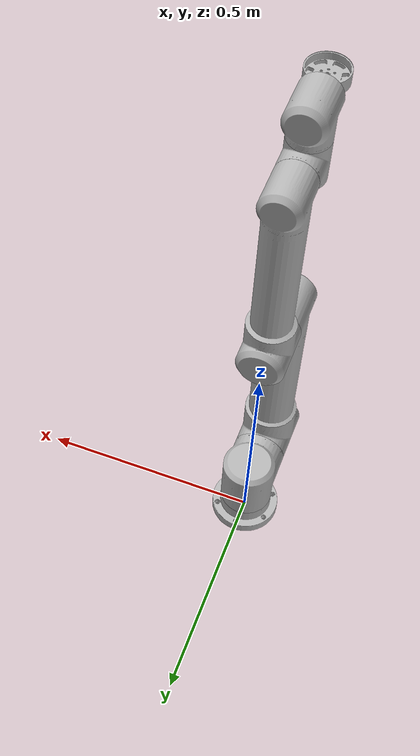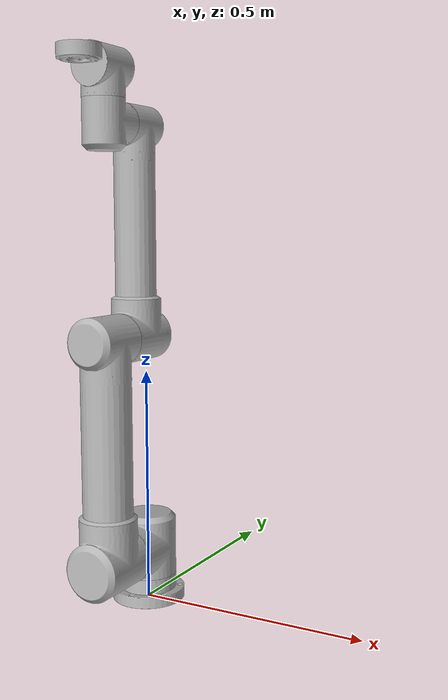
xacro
<?xml version='1.0' encoding='utf-8'?>
<robot xmlns:xacro="http://ros.org/wiki/xacro" name="utra6_1000">

  <xacro:arg name="prefix" default=""/>
  <xacro:arg name="ros_namespace" default="utra"/>
  <xacro:arg name="limited" default="false"/>
  <xacro:arg name="effort_control" default="false"/>
  <xacro:arg name="attach_to_world" default="true"/>
  <xacro:arg name="add_realsense_d435i" default="false"/>

    <!-- utra6_1000 -->
    <xacro:include filename="$(find utra_description)/urdf/utra6_1000.urdf.xacro" />

    <xacro:if value="$(arg attach_to_world)">
      <link name="world" />
    </xacro:if>

    <joint name="$(arg prefix)world_joint" type="fixed">
      <parent link="world" />
      <child link = "$(arg prefix)base_link" />
      <origin xyz="0 0 0" rpy="0 0 0" />
    </joint>

    <xacro:if value="$(arg limited)">
      <xacro:utra6_1000_urdf prefix="$(arg prefix)"
        joint1_lower_limit="${-2.0*pi}" joint1_upper_limit="${2.0*pi}"
        joint2_lower_limit="${-2.0*pi}" joint2_upper_limit="${2.0*pi}"
        joint3_lower_limit="${-2.0*pi}" joint3_upper_limit="${2.0*pi}"
        joint4_lower_limit="${-2.0*pi}" joint4_upper_limit="${2.0*pi}"
        joint5_lower_limit="${-2.0*pi}" joint5_upper_limit="${2.0*pi}"
        joint6_lower_limit="${-2.0*pi}" joint6_upper_limit="${2.0*pi}"/>
    </xacro:if>
    <xacro:unless value="$(arg limited)">
      <xacro:utra6_1000_urdf prefix="$(arg prefix)"/>
    </xacro:unless>

  <xacro:include filename="$(find utra_description)/urdf/transmission.xacro" />

  <xacro:transmission_block joint_name="$(arg prefix)joint1"/>
  <xacro:transmission_block joint_name="$(arg prefix)joint2"/>
  <xacro:transmission_block joint_name="$(arg prefix)joint3"/>
  <xacro:transmission_block joint_name="$(arg prefix)joint4"/>
  <xacro:transmission_block joint_name="$(arg prefix)joint5"/>
  <xacro:transmission_block joint_name="$(arg prefix)joint6"/>

  <xacro:include filename="$(find utra_description)/urdf/utra6_1000_common.gazebo.xacro" />

  <xacro:if value="$(arg add_realsense_d435i)" >
    <link name="$(arg prefix)d435i">
        <inertial>
          <origin xyz="0 0 0" rpy="0 0 0" />
          <mass value="0.00001" />
          <inertia ixx="0" ixy="0" ixz="0" iyy="0" iyz="0" izz="0" />
        </inertial>
        <visual>
          <origin xyz="0 0 0" rpy="0 0 0" />
          <geometry> <mesh filename="package://utra_description/meshes/d435i/d435i.STL" /> </geometry>
          <material name="Silver"> <color rgba="0.7 0.7 0.7 1.0"/> </material>
        </visual>
        <collision>
          <origin xyz="0 0 0" rpy="0 0 0" />
          <geometry> <mesh filename="package://utra_description/meshes/d435i/d435i.STL" /> </geometry>
        </collision>
    </link>
    <joint name="$(arg prefix)d435i_joint" type="fixed">
        <parent link="$(arg prefix)link_6"/>
        <child link="$(arg prefix)d435i"/>
        <origin xyz="0 0 0" rpy="0 -${pi/2} ${pi/2}"/>
    </joint>
  </xacro:if>

</robot>

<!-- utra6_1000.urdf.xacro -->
<robot xmlns:xacro="http://ros.org/wiki/xacro">

  <xacro:macro name="utra6_1000_urdf" params="prefix
    joint1_lower_limit:=${-2.0*pi} joint1_upper_limit:=${2.0*pi}
    joint2_lower_limit:=${-2.0*pi} joint2_upper_limit:=${2.0*pi}
    joint3_lower_limit:=${-2.0*pi} joint3_upper_limit:=${2.0*pi}
    joint4_lower_limit:=${-2.0*pi} joint4_upper_limit:=${2.0*pi}
    joint5_lower_limit:=${-2.0*pi} joint5_upper_limit:=${2.0*pi}
    joint6_lower_limit:=${-2.0*pi} joint6_upper_limit:=${2.0*pi}">

    <material name="Black">  <color rgba="0.0 0.0 0.0 1.0"/> </material>
    <material name="Red">    <color rgba="0.8 0.0 0.0 1.0"/> </material>
    <material name="White">  <color rgba="1.0 1.0 1.0 1.0"/> </material>
    <material name="Silver"> <color rgba="0.7 0.7 0.7 1.0"/> </material>

    <xacro:macro name="origin_joint1"> <origin xyz="0 0 0" rpy="0 0 0" /> </xacro:macro>
    <xacro:macro name="origin_joint2"> <origin xyz="0 0 0.1175" rpy="0 0 0" /> </xacro:macro>
    <xacro:macro name="origin_joint3"> <origin xyz="0 0 0.463" rpy="0 0 0" /> </xacro:macro>
    <xacro:macro name="origin_joint4"> <origin xyz="0 0 0.4325" rpy="0 0 0" /> </xacro:macro>
    <xacro:macro name="origin_joint5"> <origin xyz="0 -0.1405 0.1045" rpy="0 0 0" /> </xacro:macro>
    <xacro:macro name="origin_joint6"> <origin xyz="0 -0.0745 0" rpy="${0.5*pi} 0 0" /> </xacro:macro>

    <xacro:macro name="origin_visual_base">  <origin xyz="0 0 0" rpy="0 0 0" /> </xacro:macro>
    <xacro:macro name="origin_visual_link_1"> <origin xyz="0 0 0" rpy="0 0 0" /> </xacro:macro>
    <xacro:macro name="origin_visual_link_2"> <origin xyz="0 0 0" rpy="0 0 0" /> </xacro:macro>
    <xacro:macro name="origin_visual_link_3"> <origin xyz="0 0 0" rpy="0 0 0" /> </xacro:macro>
    <xacro:macro name="origin_visual_link_4"> <origin xyz="0 0 0" rpy="0 0 0" /> </xacro:macro>
    <xacro:macro name="origin_visual_link_5"> <origin xyz="0 0 0" rpy="0 0 0" /> </xacro:macro>
    <xacro:macro name="origin_visual_link_6"> <origin xyz="0 0 0" rpy="0 0 0" /> </xacro:macro>

    <xacro:macro name="origin_inertial_base">  <origin xyz="0 0 0" rpy="0 0 0" /> </xacro:macro>
    <xacro:macro name="origin_inertial_link_1"> <origin xyz="0 0 0" rpy="0 0 0" /> </xacro:macro>
    <xacro:macro name="origin_inertial_link_2"> <origin xyz="0 0 0" rpy="0 0 0" /> </xacro:macro>
    <xacro:macro name="origin_inertial_link_3"> <origin xyz="0 0 0" rpy="0 0 0" /> </xacro:macro>
    <xacro:macro name="origin_inertial_link_4"> <origin xyz="0 0 0" rpy="0 0 0" /> </xacro:macro>
    <xacro:macro name="origin_inertial_link_5"> <origin xyz="0 0 0" rpy="0 0 0" /> </xacro:macro>
    <xacro:macro name="origin_inertial_link_6"> <origin xyz="0 0 0" rpy="0 0 0" /> </xacro:macro>

    <xacro:macro name="inertia_base">  <inertia ixx="0" ixy="0" ixz="0" iyy="0" iyz="0" izz="0" /> </xacro:macro>
    <xacro:macro name="inertia_link_1"> <inertia ixx="0" ixy="0" ixz="0" iyy="0" iyz="0" izz="0" /> </xacro:macro>
    <xacro:macro name="inertia_link_2"> <inertia ixx="0" ixy="0" ixz="0" iyy="0" iyz="0" izz="0" /> </xacro:macro>
    <xacro:macro name="inertia_link_3"> <inertia ixx="0" ixy="0" ixz="0" iyy="0" iyz="0" izz="0" /> </xacro:macro>
    <xacro:macro name="inertia_link_4"> <inertia ixx="0" ixy="0" ixz="0" iyy="0" iyz="0" izz="0" /> </xacro:macro>
    <xacro:macro name="inertia_link_5"> <inertia ixx="0" ixy="0" ixz="0" iyy="0" iyz="0" izz="0" /> </xacro:macro>
    <xacro:macro name="inertia_link_6"> <inertia ixx="0" ixy="0" ixz="0" iyy="0" iyz="0" izz="0" /> </xacro:macro>

    <xacro:property name="mass_base"  value="0.00001" />
    <xacro:property name="mass_link_1" value="0.00001" />
    <xacro:property name="mass_link_2" value="0.00001" />
    <xacro:property name="mass_link_3" value="0.00001" />
    <xacro:property name="mass_link_4" value="0.00001" />
    <xacro:property name="mass_link_5" value="0.00001" />
    <xacro:property name="mass_link_6" value="0.00001" />

    <xacro:property name="effort_joint1" value="0" />
    <xacro:property name="effort_joint2" value="0" />
    <xacro:property name="effort_joint3" value="0" />
    <xacro:property name="effort_joint4" value="0" />
    <xacro:property name="effort_joint5" value="0" />
    <xacro:property name="effort_joint6" value="0" />

    <xacro:property name="damping_joint1" value="0" />
    <xacro:property name="damping_joint2" value="0" />
    <xacro:property name="damping_joint3" value="0" />
    <xacro:property name="damping_joint4" value="0" />
    <xacro:property name="damping_joint5" value="0" />
    <xacro:property name="damping_joint6" value="0" />

    <xacro:property name="friction_joint1" value="0" />
    <xacro:property name="friction_joint2" value="0" />
    <xacro:property name="friction_joint3" value="0" />
    <xacro:property name="friction_joint4" value="0" />
    <xacro:property name="friction_joint5" value="0" />
    <xacro:property name="friction_joint6" value="0" />

    <link name="${prefix}base_link">
      <inertial>
        <xacro:origin_inertial_base/>
        <mass value="${mass_base}" />
        <xacro:inertia_base/>
      </inertial>
      <visual>
        <xacro:origin_visual_base/>
        <geometry> <mesh filename="package://utra_description/meshes/utra6_1000/visual/base.STL" /> </geometry>
        <material name="Silver" />
      </visual>
      <collision>
        <xacro:origin_visual_base/>
        <geometry> <mesh filename="package://utra_description/meshes/utra6_1000/visual/base.STL" /> </geometry>
      </collision>
    </link>

    <joint name="${prefix}joint1" type="revolute">
      <xacro:origin_joint1/>
      <parent link="${prefix}base_link" />
      <child link="${prefix}link_1" />
      <axis xyz="0 0 1" />
      <limit lower="${joint1_lower_limit}" upper="${joint1_upper_limit}" effort="${effort_joint1}" velocity="3.14" />
      <dynamics damping="${damping_joint1}" friction="${friction_joint1}" />
    </joint>

    <link name="${prefix}link_1">
      <inertial>
        <xacro:origin_inertial_link_1/>
        <mass value="${mass_link_1}" />
        <xacro:inertia_link_1/>
      </inertial>
      <visual>
        <xacro:origin_visual_link_1/>
        <geometry> <mesh filename="package://utra_description/meshes/utra6_1000/visual/link1.STL" /> </geometry>
        <material name="Silver" />
      </visual>
      <collision>
        <xacro:origin_visual_link_1/>
        <geometry> <mesh filename="package://utra_description/meshes/utra6_1000/visual/link1.STL" /> </geometry>
      </collision>
    </link>

    <joint name="${prefix}joint2" type="revolute">
      <xacro:origin_joint2/>
      <parent link="${prefix}link_1" />
      <child link="${prefix}link_2" />
      <axis xyz="0 -1 0" />
      <limit lower="${joint2_lower_limit}" upper="${joint2_upper_limit}" effort="${effort_joint2}" velocity="3.14" />
      <dynamics damping="${damping_joint2}" friction="${friction_joint2}" />
    </joint>

    <link name="${prefix}link_2">
      <inertial>
        <xacro:origin_inertial_link_2/>
        <mass value="${mass_link_2}" />
        <xacro:inertia_link_2/>
      </inertial>
      <visual>
        <xacro:origin_visual_link_2/>
        <geometry> <mesh filename="package://utra_description/meshes/utra6_1000/visual/link2.STL" /> </geometry>
        <material name="Silver" />
      </visual>
      <collision>
        <xacro:origin_visual_link_2/>
        <geometry> <mesh filename="package://utra_description/meshes/utra6_1000/visual/link2.STL" /> </geometry>
      </collision>
    </link>

    <joint name="${prefix}joint3" type="revolute">
      <xacro:origin_joint3/>
      <parent link="${prefix}link_2" />
      <child link="${prefix}link_3" />
      <axis xyz="0 1 0" />
      <limit lower="${joint3_lower_limit}" upper="${joint3_upper_limit}" effort="${effort_joint3}" velocity="3.14" />
      <dynamics damping="${damping_joint3}" friction="${friction_joint3}" />
    </joint>

    <link name="${prefix}link_3">
      <inertial>
        <xacro:origin_inertial_link_3/>
        <mass value="${mass_link_3}" />
        <xacro:inertia_link_3/>
      </inertial>
      <visual>
        <xacro:origin_visual_link_3/>
        <geometry> <mesh filename="package://utra_description/meshes/utra6_1000/visual/link3.STL" /> </geometry>
        <material name="Silver" />
      </visual>
      <collision>
        <xacro:origin_visual_link_3/>
        <geometry> <mesh filename="package://utra_description/meshes/utra6_1000/visual/link3.STL" /> </geometry>
      </collision>
    </link>

    <joint name="${prefix}joint4" type="revolute">
      <xacro:origin_joint4/>
      <parent link="${prefix}link_3" />
      <child link="${prefix}link_4" />
      <axis xyz="0 -1 0" />
      <limit lower="${joint4_lower_limit}" upper="${joint4_upper_limit}" effort="${effort_joint4}" velocity="3.14" />
      <dynamics damping="${damping_joint4}" friction="${friction_joint4}" />
    </joint>

    <link name="${prefix}link_4">
      <inertial>
        <xacro:origin_inertial_link_4/>
        <mass value="${mass_link_4}" />
        <xacro:inertia_link_4/>
      </inertial>
      <visual>
        <xacro:origin_visual_link_4/>
        <geometry> <mesh filename="package://utra_description/meshes/utra6_1000/visual/link4.STL" /> </geometry>
        <material name="Silver" />
      </visual>
      <collision>
        <xacro:origin_visual_link_4/>
        <geometry> <mesh filename="package://utra_description/meshes/utra6_1000/visual/link4.STL" /> </geometry>
      </collision>
    </link>

    <joint name="${prefix}joint5" type="revolute">
      <xacro:origin_joint5/>
      <parent link="${prefix}link_4" />
      <child link="${prefix}link_5" />
      <axis xyz="0 0 1" />
      <limit lower="${joint5_lower_limit}" upper="${joint5_upper_limit}" effort="${effort_joint5}" velocity="3.14" />
      <dynamics damping="${damping_joint5}" friction="${friction_joint5}" />
    </joint>

    <link name="${prefix}link_5">
      <inertial>
        <mass value="${mass_link_5}" />
        <xacro:origin_inertial_link_5/>
        <xacro:inertia_link_5/>
      </inertial>
      <visual>
        <xacro:origin_visual_link_5/>
        <geometry> <mesh filename="package://utra_description/meshes/utra6_1000/visual/link5.STL" /> </geometry>
        <material name="Silver" />
      </visual>
      <collision>
        <xacro:origin_visual_link_5/>
        <geometry> <mesh filename="package://utra_description/meshes/utra6_1000/visual/link5.STL" /> </geometry>
      </collision>
    </link>

    <joint name="${prefix}joint6" type="revolute">
      <xacro:origin_joint6/>
      <parent link="${prefix}link_5" />
      <child link="${prefix}link_6" />
      <axis xyz="0 0 1" />
      <limit lower="${joint6_lower_limit}" upper="${joint6_upper_limit}" effort="${effort_joint6}" velocity="3.14" />
      <dynamics damping="${damping_joint6}" friction="${friction_joint6}" />
    </joint>

    <link name="${prefix}link_6">
      <inertial>
        <mass value="${mass_link_6}" />
        <xacro:origin_inertial_link_6/>
        <xacro:inertia_link_6/>
      </inertial>
      <visual>
        <xacro:origin_visual_link_6/>
        <geometry> <mesh filename="package://utra_description/meshes/utra6_1000/visual/link6.STL" /> </geometry>
        <material name="Silver" />
      </visual>
      <collision>
        <xacro:origin_visual_link_6/>
        <geometry> <mesh filename="package://utra_description/meshes/utra6_1000/visual/link6.STL" /> </geometry>
      </collision>
    </link>

  </xacro:macro>
</robot>
